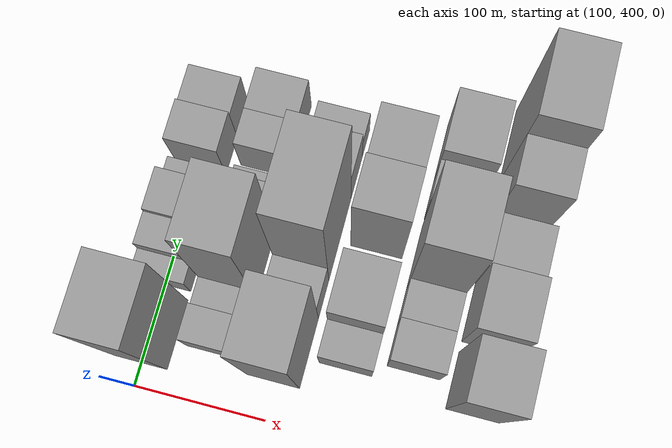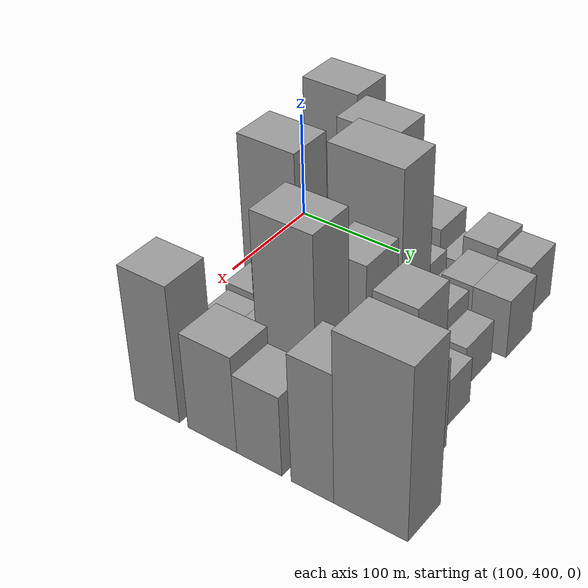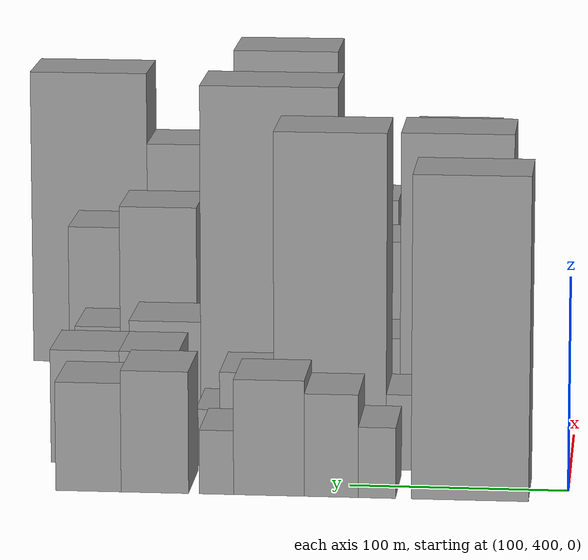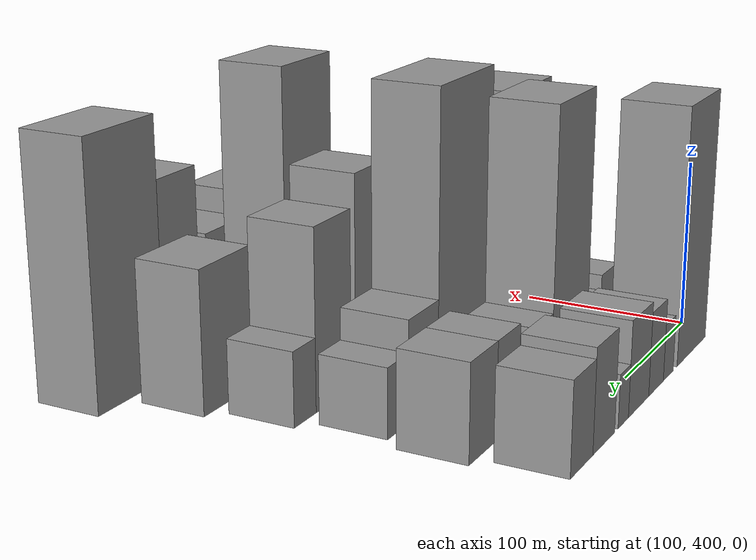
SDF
<sdf version="1.6">
 <world name="default">
  <model name="building_33">
   <static>1</static>
   <pose>100.0000 444.0145 0 0.000000 0.000000 0.000000</pose>
   <link name="link">
    <pose>0 0 75.00 0 0 0</pose>
    <collision name="collision"><geometry><box><size>40.0000 53.2121 150.0000</size></box></geometry></collision>
    <visual name="visual">
     <cast_shadows>0</cast_shadows>
     <geometry><box><size>40.0000 53.2121 150.0000</size></box></geometry>
     <material>
      <script>
       <uri>model://grey_wall/materials/scripts</uri>
       <uri>model://grey_wall/materials/textures</uri>
       <name>vrc/grey_wall</name>
      </script>
     </material>
    </visual>
   </link>
  </model>
  <model name="building_34">
   <static>1</static>
   <pose>100.0000 486.1541 0 0.000000 0.000000 0.000000</pose>
   <link name="link">
    <pose>0 0 16.50 0 0 0</pose>
    <collision name="collision"><geometry><box><size>40.0000 17.0671 33.0000</size></box></geometry></collision>
    <visual name="visual">
     <cast_shadows>0</cast_shadows>
     <geometry><box><size>40.0000 17.0671 33.0000</size></box></geometry>
     <material>
      <script>
       <uri>model://grey_wall/materials/scripts</uri>
       <uri>model://grey_wall/materials/textures</uri>
       <name>vrc/grey_wall</name>
      </script>
     </material>
    </visual>
   </link>
  </model>
  <model name="building_35">
   <static>1</static>
   <pose>100.0000 506.9671 0 0.000000 0.000000 0.000000</pose>
   <link name="link">
    <pose>0 0 24.00 0 0 0</pose>
    <collision name="collision"><geometry><box><size>40.0000 24.5587 48.0000</size></box></geometry></collision>
    <visual name="visual">
     <cast_shadows>0</cast_shadows>
     <geometry><box><size>40.0000 24.5587 48.0000</size></box></geometry>
     <material>
      <script>
       <uri>model://grey_wall/materials/scripts</uri>
       <uri>model://grey_wall/materials/textures</uri>
       <name>vrc/grey_wall</name>
      </script>
     </material>
    </visual>
   </link>
  </model>
  <model name="building_36">
   <static>1</static>
   <pose>100.0000 535.3519 0 0.000000 0.000000 0.000000</pose>
   <link name="link">
    <pose>0 0 27.00 0 0 0</pose>
    <collision name="collision"><geometry><box><size>40.0000 32.2110 54.0000</size></box></geometry></collision>
    <visual name="visual">
     <cast_shadows>0</cast_shadows>
     <geometry><box><size>40.0000 32.2110 54.0000</size></box></geometry>
     <material>
      <script>
       <uri>model://grey_wall/materials/scripts</uri>
       <uri>model://grey_wall/materials/textures</uri>
       <name>vrc/grey_wall</name>
      </script>
     </material>
    </visual>
   </link>
  </model>
  <model name="building_37">
   <static>1</static>
   <pose>100.0000 559.2632 0 0.000000 0.000000 0.000000</pose>
   <link name="link">
    <pose>0 0 15.00 0 0 0</pose>
    <collision name="collision"><geometry><box><size>40.0000 15.6117 30.0000</size></box></geometry></collision>
    <visual name="visual">
     <cast_shadows>0</cast_shadows>
     <geometry><box><size>40.0000 15.6117 30.0000</size></box></geometry>
     <material>
      <script>
       <uri>model://grey_wall/materials/scripts</uri>
       <uri>model://grey_wall/materials/textures</uri>
       <name>vrc/grey_wall</name>
      </script>
     </material>
    </visual>
   </link>
  </model>
  <model name="building_38">
   <static>1</static>
   <pose>100.0000 587.5216 0 0.000000 0.000000 0.000000</pose>
   <link name="link">
    <pose>0 0 28.50 0 0 0</pose>
    <collision name="collision"><geometry><box><size>40.0000 30.9050 57.0000</size></box></geometry></collision>
    <visual name="visual">
     <cast_shadows>0</cast_shadows>
     <geometry><box><size>40.0000 30.9050 57.0000</size></box></geometry>
     <material>
      <script>
       <uri>model://grey_wall/materials/scripts</uri>
       <uri>model://grey_wall/materials/textures</uri>
       <name>vrc/grey_wall</name>
      </script>
     </material>
    </visual>
   </link>
  </model>
  <model name="building_39">
   <static>1</static>
   <pose>100.0000 618.0033 0 0.000000 0.000000 0.000000</pose>
   <link name="link">
    <pose>0 0 25.50 0 0 0</pose>
    <collision name="collision"><geometry><box><size>40.0000 30.0585 51.0000</size></box></geometry></collision>
    <visual name="visual">
     <cast_shadows>0</cast_shadows>
     <geometry><box><size>40.0000 30.0585 51.0000</size></box></geometry>
     <material>
      <script>
       <uri>model://grey_wall/materials/scripts</uri>
       <uri>model://grey_wall/materials/textures</uri>
       <name>vrc/grey_wall</name>
      </script>
     </material>
    </visual>
   </link>
  </model>
  <model name="building_83">
   <static>1</static>
   <pose>149.0000 451.2249 0 0.000000 0.000000 0.000000</pose>
   <link name="link">
    <pose>0 0 22.50 0 0 0</pose>
    <collision name="collision"><geometry><box><size>40.0000 26.6337 45.0000</size></box></geometry></collision>
    <visual name="visual">
     <cast_shadows>0</cast_shadows>
     <geometry><box><size>40.0000 26.6337 45.0000</size></box></geometry>
     <material>
      <script>
       <uri>model://grey_wall/materials/scripts</uri>
       <uri>model://grey_wall/materials/textures</uri>
       <name>vrc/grey_wall</name>
      </script>
     </material>
    </visual>
   </link>
  </model>
  <model name="building_84">
   <static>1</static>
   <pose>149.0000 474.9563 0 0.000000 0.000000 0.000000</pose>
   <link name="link">
    <pose>0 0 18.00 0 0 0</pose>
    <collision name="collision"><geometry><box><size>40.0000 20.8291 36.0000</size></box></geometry></collision>
    <visual name="visual">
     <cast_shadows>0</cast_shadows>
     <geometry><box><size>40.0000 20.8291 36.0000</size></box></geometry>
     <material>
      <script>
       <uri>model://grey_wall/materials/scripts</uri>
       <uri>model://grey_wall/materials/textures</uri>
       <name>vrc/grey_wall</name>
      </script>
     </material>
    </visual>
   </link>
  </model>
  <model name="building_85">
   <static>1</static>
   <pose>149.0000 511.5533 0 0.000000 0.000000 0.000000</pose>
   <link name="link">
    <pose>0 0 79.50 0 0 0</pose>
    <collision name="collision"><geometry><box><size>40.0000 52.3647 159.0000</size></box></geometry></collision>
    <visual name="visual">
     <cast_shadows>0</cast_shadows>
     <geometry><box><size>40.0000 52.3647 159.0000</size></box></geometry>
     <material>
      <script>
       <uri>model://grey_wall/materials/scripts</uri>
       <uri>model://grey_wall/materials/textures</uri>
       <name>vrc/grey_wall</name>
      </script>
     </material>
    </visual>
   </link>
  </model>
  <model name="building_86">
   <static>1</static>
   <pose>149.0000 550.3458 0 0.000000 0.000000 0.000000</pose>
   <link name="link">
    <pose>0 0 22.50 0 0 0</pose>
    <collision name="collision"><geometry><box><size>40.0000 25.2205 45.0000</size></box></geometry></collision>
    <visual name="visual">
     <cast_shadows>0</cast_shadows>
     <geometry><box><size>40.0000 25.2205 45.0000</size></box></geometry>
     <material>
      <script>
       <uri>model://grey_wall/materials/scripts</uri>
       <uri>model://grey_wall/materials/textures</uri>
       <name>vrc/grey_wall</name>
      </script>
     </material>
    </visual>
   </link>
  </model>
  <model name="building_87">
   <static>1</static>
   <pose>149.0000 568.5359 0 0.000000 0.000000 0.000000</pose>
   <link name="link">
    <pose>0 0 13.50 0 0 0</pose>
    <collision name="collision"><geometry><box><size>40.0000 11.1596 27.0000</size></box></geometry></collision>
    <visual name="visual">
     <cast_shadows>0</cast_shadows>
     <geometry><box><size>40.0000 11.1596 27.0000</size></box></geometry>
     <material>
      <script>
       <uri>model://grey_wall/materials/scripts</uri>
       <uri>model://grey_wall/materials/textures</uri>
       <name>vrc/grey_wall</name>
      </script>
     </material>
    </visual>
   </link>
  </model>
  <model name="building_88">
   <static>1</static>
   <pose>149.0000 595.9798 0 0.000000 0.000000 0.000000</pose>
   <link name="link">
    <pose>0 0 27.00 0 0 0</pose>
    <collision name="collision"><geometry><box><size>40.0000 27.7284 54.0000</size></box></geometry></collision>
    <visual name="visual">
     <cast_shadows>0</cast_shadows>
     <geometry><box><size>40.0000 27.7284 54.0000</size></box></geometry>
     <material>
      <script>
       <uri>model://grey_wall/materials/scripts</uri>
       <uri>model://grey_wall/materials/textures</uri>
       <name>vrc/grey_wall</name>
      </script>
     </material>
    </visual>
   </link>
  </model>
  <model name="building_89">
   <static>1</static>
   <pose>149.0000 626.0319 0 0.000000 0.000000 0.000000</pose>
   <link name="link">
    <pose>0 0 27.00 0 0 0</pose>
    <collision name="collision"><geometry><box><size>40.0000 32.3757 54.0000</size></box></geometry></collision>
    <visual name="visual">
     <cast_shadows>0</cast_shadows>
     <geometry><box><size>40.0000 32.3757 54.0000</size></box></geometry>
     <material>
      <script>
       <uri>model://grey_wall/materials/scripts</uri>
       <uri>model://grey_wall/materials/textures</uri>
       <name>vrc/grey_wall</name>
      </script>
     </material>
    </visual>
   </link>
  </model>
  <model name="building_131">
   <static>1</static>
   <pose>198.0000 455.5436 0 0.000000 0.000000 0.000000</pose>
   <link name="link">
    <pose>0 0 75.00 0 0 0</pose>
    <collision name="collision"><geometry><box><size>40.0000 53.1893 150.0000</size></box></geometry></collision>
    <visual name="visual">
     <cast_shadows>0</cast_shadows>
     <geometry><box><size>40.0000 53.1893 150.0000</size></box></geometry>
     <material>
      <script>
       <uri>model://grey_wall/materials/scripts</uri>
       <uri>model://grey_wall/materials/textures</uri>
       <name>vrc/grey_wall</name>
      </script>
     </material>
    </visual>
   </link>
  </model>
  <model name="building_132">
   <static>1</static>
   <pose>198.0000 497.0287 0 0.000000 0.000000 0.000000</pose>
   <link name="link">
    <pose>0 0 25.50 0 0 0</pose>
    <collision name="collision"><geometry><box><size>40.0000 29.7809 51.0000</size></box></geometry></collision>
    <visual name="visual">
     <cast_shadows>0</cast_shadows>
     <geometry><box><size>40.0000 29.7809 51.0000</size></box></geometry>
     <material>
      <script>
       <uri>model://grey_wall/materials/scripts</uri>
       <uri>model://grey_wall/materials/textures</uri>
       <name>vrc/grey_wall</name>
      </script>
     </material>
    </visual>
   </link>
  </model>
  <model name="building_133">
   <static>1</static>
   <pose>198.0000 544.5320 0 0.000000 0.000000 0.000000</pose>
   <link name="link">
    <pose>0 0 85.50 0 0 0</pose>
    <collision name="collision"><geometry><box><size>40.0000 65.2258 171.0000</size></box></geometry></collision>
    <visual name="visual">
     <cast_shadows>0</cast_shadows>
     <geometry><box><size>40.0000 65.2258 171.0000</size></box></geometry>
     <material>
      <script>
       <uri>model://grey_wall/materials/scripts</uri>
       <uri>model://grey_wall/materials/textures</uri>
       <name>vrc/grey_wall</name>
      </script>
     </material>
    </visual>
   </link>
  </model>
  <model name="building_134">
   <static>1</static>
   <pose>198.0000 594.2405 0 0.000000 0.000000 0.000000</pose>
   <link name="link">
    <pose>0 0 28.50 0 0 0</pose>
    <collision name="collision"><geometry><box><size>40.0000 34.1912 57.0000</size></box></geometry></collision>
    <visual name="visual">
     <cast_shadows>0</cast_shadows>
     <geometry><box><size>40.0000 34.1912 57.0000</size></box></geometry>
     <material>
      <script>
       <uri>model://grey_wall/materials/scripts</uri>
       <uri>model://grey_wall/materials/textures</uri>
       <name>vrc/grey_wall</name>
      </script>
     </material>
    </visual>
   </link>
  </model>
  <model name="building_135">
   <static>1</static>
   <pose>198.0000 622.7536 0 0.000000 0.000000 0.000000</pose>
   <link name="link">
    <pose>0 0 19.50 0 0 0</pose>
    <collision name="collision"><geometry><box><size>40.0000 22.8350 39.0000</size></box></geometry></collision>
    <visual name="visual">
     <cast_shadows>0</cast_shadows>
     <geometry><box><size>40.0000 22.8350 39.0000</size></box></geometry>
     <material>
      <script>
       <uri>model://grey_wall/materials/scripts</uri>
       <uri>model://grey_wall/materials/textures</uri>
       <name>vrc/grey_wall</name>
      </script>
     </material>
    </visual>
   </link>
  </model>
  <model name="building_177">
   <static>1</static>
   <pose>247.0000 464.2533 0 0.000000 0.000000 0.000000</pose>
   <link name="link">
    <pose>0 0 25.50 0 0 0</pose>
    <collision name="collision"><geometry><box><size>40.0000 26.8072 51.0000</size></box></geometry></collision>
    <visual name="visual">
     <cast_shadows>0</cast_shadows>
     <geometry><box><size>40.0000 26.8072 51.0000</size></box></geometry>
     <material>
      <script>
       <uri>model://grey_wall/materials/scripts</uri>
       <uri>model://grey_wall/materials/textures</uri>
       <name>vrc/grey_wall</name>
      </script>
     </material>
    </visual>
   </link>
  </model>
  <model name="building_178">
   <static>1</static>
   <pose>247.0000 499.9358 0 0.000000 0.000000 0.000000</pose>
   <link name="link">
    <pose>0 0 43.50 0 0 0</pose>
    <collision name="collision"><geometry><box><size>40.0000 44.5578 87.0000</size></box></geometry></collision>
    <visual name="visual">
     <cast_shadows>0</cast_shadows>
     <geometry><box><size>40.0000 44.5578 87.0000</size></box></geometry>
     <material>
      <script>
       <uri>model://grey_wall/materials/scripts</uri>
       <uri>model://grey_wall/materials/textures</uri>
       <name>vrc/grey_wall</name>
      </script>
     </material>
    </visual>
   </link>
  </model>
  <model name="building_179">
   <static>1</static>
   <pose>247.0000 527.1977 0 0.000000 0.000000 0.000000</pose>
   <link name="link">
    <pose>0 0 10.50 0 0 0</pose>
    <collision name="collision"><geometry><box><size>40.0000 9.9661 21.0000</size></box></geometry></collision>
    <visual name="visual">
     <cast_shadows>0</cast_shadows>
     <geometry><box><size>40.0000 9.9661 21.0000</size></box></geometry>
     <material>
      <script>
       <uri>model://grey_wall/materials/scripts</uri>
       <uri>model://grey_wall/materials/textures</uri>
       <name>vrc/grey_wall</name>
      </script>
     </material>
    </visual>
   </link>
  </model>
  <model name="building_180">
   <static>1</static>
   <pose>247.0000 560.8029 0 0.000000 0.000000 0.000000</pose>
   <link name="link">
    <pose>0 0 60.00 0 0 0</pose>
    <collision name="collision"><geometry><box><size>40.0000 37.2442 120.0000</size></box></geometry></collision>
    <visual name="visual">
     <cast_shadows>0</cast_shadows>
     <geometry><box><size>40.0000 37.2442 120.0000</size></box></geometry>
     <material>
      <script>
       <uri>model://grey_wall/materials/scripts</uri>
       <uri>model://grey_wall/materials/textures</uri>
       <name>vrc/grey_wall</name>
      </script>
     </material>
    </visual>
   </link>
  </model>
  <model name="building_181">
   <static>1</static>
   <pose>247.0000 603.2014 0 0.000000 0.000000 0.000000</pose>
   <link name="link">
    <pose>0 0 51.00 0 0 0</pose>
    <collision name="collision"><geometry><box><size>40.0000 37.5528 102.0000</size></box></geometry></collision>
    <visual name="visual">
     <cast_shadows>0</cast_shadows>
     <geometry><box><size>40.0000 37.5528 102.0000</size></box></geometry>
     <material>
      <script>
       <uri>model://grey_wall/materials/scripts</uri>
       <uri>model://grey_wall/materials/textures</uri>
       <name>vrc/grey_wall</name>
      </script>
     </material>
    </visual>
   </link>
  </model>
  <model name="building_182">
   <static>1</static>
   <pose>247.0000 633.0966 0 0.000000 0.000000 0.000000</pose>
   <link name="link">
    <pose>0 0 21.00 0 0 0</pose>
    <collision name="collision"><geometry><box><size>40.0000 22.2375 42.0000</size></box></geometry></collision>
    <visual name="visual">
     <cast_shadows>0</cast_shadows>
     <geometry><box><size>40.0000 22.2375 42.0000</size></box></geometry>
     <material>
      <script>
       <uri>model://grey_wall/materials/scripts</uri>
       <uri>model://grey_wall/materials/textures</uri>
       <name>vrc/grey_wall</name>
      </script>
     </material>
    </visual>
   </link>
  </model>
  <model name="building_224">
   <static>1</static>
   <pose>296.0000 476.4395 0 0.000000 0.000000 0.000000</pose>
   <link name="link">
    <pose>0 0 27.00 0 0 0</pose>
    <collision name="collision"><geometry><box><size>40.0000 30.4362 54.0000</size></box></geometry></collision>
    <visual name="visual">
     <cast_shadows>0</cast_shadows>
     <geometry><box><size>40.0000 30.4362 54.0000</size></box></geometry>
     <material>
      <script>
       <uri>model://grey_wall/materials/scripts</uri>
       <uri>model://grey_wall/materials/textures</uri>
       <name>vrc/grey_wall</name>
      </script>
     </material>
    </visual>
   </link>
  </model>
  <model name="building_225">
   <static>1</static>
   <pose>296.0000 505.6279 0 0.000000 0.000000 0.000000</pose>
   <link name="link">
    <pose>0 0 27.00 0 0 0</pose>
    <collision name="collision"><geometry><box><size>40.0000 27.9406 54.0000</size></box></geometry></collision>
    <visual name="visual">
     <cast_shadows>0</cast_shadows>
     <geometry><box><size>40.0000 27.9406 54.0000</size></box></geometry>
     <material>
      <script>
       <uri>model://grey_wall/materials/scripts</uri>
       <uri>model://grey_wall/materials/textures</uri>
       <name>vrc/grey_wall</name>
      </script>
     </material>
    </visual>
   </link>
  </model>
  <model name="building_226">
   <static>1</static>
   <pose>296.0000 545.3223 0 0.000000 0.000000 0.000000</pose>
   <link name="link">
    <pose>0 0 85.50 0 0 0</pose>
    <collision name="collision"><geometry><box><size>40.0000 51.4481 171.0000</size></box></geometry></collision>
    <visual name="visual">
     <cast_shadows>0</cast_shadows>
     <geometry><box><size>40.0000 51.4481 171.0000</size></box></geometry>
     <material>
      <script>
       <uri>model://grey_wall/materials/scripts</uri>
       <uri>model://grey_wall/materials/textures</uri>
       <name>vrc/grey_wall</name>
      </script>
     </material>
    </visual>
   </link>
  </model>
  <model name="building_227">
   <static>1</static>
   <pose>296.0000 591.3827 0 0.000000 0.000000 0.000000</pose>
   <link name="link">
    <pose>0 0 30.00 0 0 0</pose>
    <collision name="collision"><geometry><box><size>40.0000 30.6728 60.0000</size></box></geometry></collision>
    <visual name="visual">
     <cast_shadows>0</cast_shadows>
     <geometry><box><size>40.0000 30.6728 60.0000</size></box></geometry>
     <material>
      <script>
       <uri>model://grey_wall/materials/scripts</uri>
       <uri>model://grey_wall/materials/textures</uri>
       <name>vrc/grey_wall</name>
      </script>
     </material>
    </visual>
   </link>
  </model>
  <model name="building_228">
   <static>1</static>
   <pose>296.0000 630.3537 0 0.000000 0.000000 0.000000</pose>
   <link name="link">
    <pose>0 0 40.50 0 0 0</pose>
    <collision name="collision"><geometry><box><size>40.0000 47.2694 81.0000</size></box></geometry></collision>
    <visual name="visual">
     <cast_shadows>0</cast_shadows>
     <geometry><box><size>40.0000 47.2694 81.0000</size></box></geometry>
     <material>
      <script>
       <uri>model://grey_wall/materials/scripts</uri>
       <uri>model://grey_wall/materials/textures</uri>
       <name>vrc/grey_wall</name>
      </script>
     </material>
    </visual>
   </link>
  </model>
  <model name="building_269">
   <static>1</static>
   <pose>345.0000 463.3042 0 0.000000 0.000000 0.000000</pose>
   <link name="link">
    <pose>0 0 61.50 0 0 0</pose>
    <collision name="collision"><geometry><box><size>40.0000 42.8798 123.0000</size></box></geometry></collision>
    <visual name="visual">
     <cast_shadows>0</cast_shadows>
     <geometry><box><size>40.0000 42.8798 123.0000</size></box></geometry>
     <material>
      <script>
       <uri>model://grey_wall/materials/scripts</uri>
       <uri>model://grey_wall/materials/textures</uri>
       <name>vrc/grey_wall</name>
      </script>
     </material>
    </visual>
   </link>
  </model>
  <model name="building_270">
   <static>1</static>
   <pose>345.0000 515.0895 0 0.000000 0.000000 0.000000</pose>
   <link name="link">
    <pose>0 0 43.50 0 0 0</pose>
    <collision name="collision"><geometry><box><size>40.0000 44.6908 87.0000</size></box></geometry></collision>
    <visual name="visual">
     <cast_shadows>0</cast_shadows>
     <geometry><box><size>40.0000 44.6908 87.0000</size></box></geometry>
     <material>
      <script>
       <uri>model://grey_wall/materials/scripts</uri>
       <uri>model://grey_wall/materials/textures</uri>
       <name>vrc/grey_wall</name>
      </script>
     </material>
    </visual>
   </link>
  </model>
  <model name="building_271">
   <static>1</static>
   <pose>345.0000 557.1380 0 0.000000 0.000000 0.000000</pose>
   <link name="link">
    <pose>0 0 36.00 0 0 0</pose>
    <collision name="collision"><geometry><box><size>40.0000 39.4062 72.0000</size></box></geometry></collision>
    <visual name="visual">
     <cast_shadows>0</cast_shadows>
     <geometry><box><size>40.0000 39.4062 72.0000</size></box></geometry>
     <material>
      <script>
       <uri>model://grey_wall/materials/scripts</uri>
       <uri>model://grey_wall/materials/textures</uri>
       <name>vrc/grey_wall</name>
      </script>
     </material>
    </visual>
   </link>
  </model>
  <model name="building_272">
   <static>1</static>
   <pose>345.0000 602.6223 0 0.000000 0.000000 0.000000</pose>
   <link name="link">
    <pose>0 0 57.00 0 0 0</pose>
    <collision name="collision"><geometry><box><size>40.0000 35.5623 114.0000</size></box></geometry></collision>
    <visual name="visual">
     <cast_shadows>0</cast_shadows>
     <geometry><box><size>40.0000 35.5623 114.0000</size></box></geometry>
     <material>
      <script>
       <uri>model://grey_wall/materials/scripts</uri>
       <uri>model://grey_wall/materials/textures</uri>
       <name>vrc/grey_wall</name>
      </script>
     </material>
    </visual>
   </link>
  </model>
  <model name="building_273">
   <static>1</static>
   <pose>345.0000 649.9290 0 0.000000 0.000000 0.000000</pose>
   <link name="link">
    <pose>0 0 75.00 0 0 0</pose>
    <collision name="collision"><geometry><box><size>40.0000 59.0512 150.0000</size></box></geometry></collision>
    <visual name="visual">
     <cast_shadows>0</cast_shadows>
     <geometry><box><size>40.0000 59.0512 150.0000</size></box></geometry>
     <material>
      <script>
       <uri>model://grey_wall/materials/scripts</uri>
       <uri>model://grey_wall/materials/textures</uri>
       <name>vrc/grey_wall</name>
      </script>
     </material>
    </visual>
   </link>
  </model>
 </world>
</sdf>
